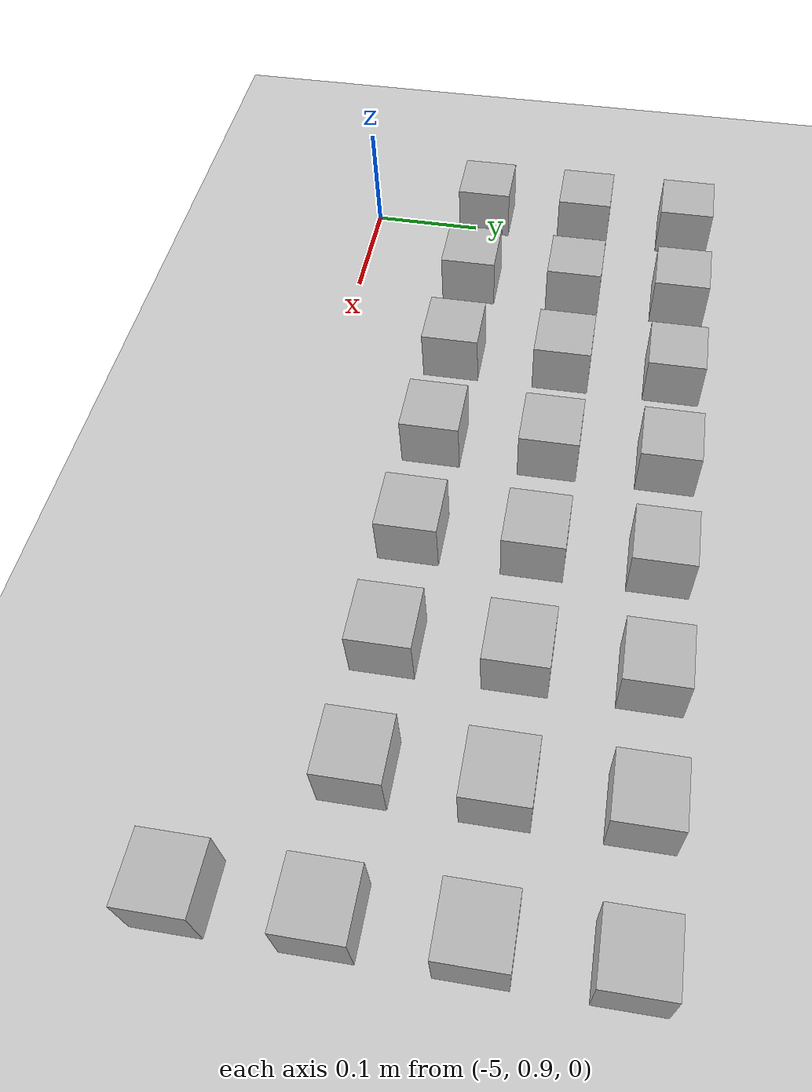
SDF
<sdf version="1.6">
 <world name="default">
  <model name="ground_plane">
   <static>1</static>
   <link name="link">
    <collision name="collision">
     <geometry><plane><normal>0 0 1</normal><size>100 100</size></plane></geometry>
     <surface><friction><ode><mu>100</mu><mu2>50</mu2></ode></friction></surface>
    </collision>
    <visual name="visual">
     <cast_shadows>0</cast_shadows>
     <geometry><plane><normal>0 0 1</normal><size>100 100</size></plane></geometry>
     <material>
      <script><uri>file://media/materials/scripts/gazebo.material</uri><name>Gazebo/Grey</name></script>
     </material>
    </visual>
    <velocity_decay><linear>0</linear><angular>0</angular></velocity_decay>
   </link>
  </model>
  <model name="at39">
   <static>0</static>
   <link name="link">
    <inertial>
     <mass>0.01</mass>
     <inertia><ixx>4e-05</ixx><ixy>0</ixy><ixz>0</ixz><iyy>4e-05</iyy><iyz>0</iyz><izz>4e-05</izz></inertia>
    </inertial>
    <visual name="visual">
     <transparency>0.1</transparency>
     <geometry><box><size>0.05 0.05 0.05</size></box></geometry>
     <material>
      <script>
       <uri>model://at0/materials/scripts</uri>
       <uri>model://at0/materials/textures</uri>
       <name>at0/Diffuse</name>
      </script>
     </material>
    </visual>
    <collision name="collision">
     <geometry><box><size>0.05 0.05 0.05</size></box></geometry>
     <surface><friction><ode><mu>0.8</mu><mu2>0.7</mu2></ode></friction></surface>
    </collision>
    <velocity_decay><linear>0</linear><angular>0</angular></velocity_decay>
   </link>
   <pose>-4.31833 0.909653 0.024993 -2.9e-05 -2.9e-05 5e-06</pose>
  </model>
  <model name="at40">
   <static>0</static>
   <link name="link">
    <inertial>
     <mass>0.01</mass>
     <inertia><ixx>4e-05</ixx><ixy>0</ixy><ixz>0</ixz><iyy>4e-05</iyy><iyz>0</iyz><izz>4e-05</izz></inertia>
    </inertial>
    <visual name="visual">
     <transparency>0.1</transparency>
     <geometry><box><size>0.05 0.05 0.05</size></box></geometry>
     <material>
      <script>
       <uri>model://at0/materials/scripts</uri>
       <uri>model://at0/materials/textures</uri>
       <name>at0/Diffuse</name>
      </script>
     </material>
    </visual>
    <collision name="collision">
     <geometry><box><size>0.05 0.05 0.05</size></box></geometry>
     <surface><friction><ode><mu>0.8</mu><mu2>0.7</mu2></ode></friction></surface>
    </collision>
    <velocity_decay><linear>0</linear><angular>0</angular></velocity_decay>
   </link>
   <pose>-5.01833 1.00965 0.024997 2.9e-05 2.9e-05 5e-06</pose>
  </model>
  <model name="at41">
   <static>0</static>
   <link name="link">
    <inertial>
     <mass>0.01</mass>
     <inertia><ixx>4e-05</ixx><ixy>0</ixy><ixz>0</ixz><iyy>4e-05</iyy><iyz>0</iyz><izz>4e-05</izz></inertia>
    </inertial>
    <visual name="visual">
     <transparency>0.1</transparency>
     <geometry><box><size>0.05 0.05 0.05</size></box></geometry>
     <material>
      <script>
       <uri>model://at0/materials/scripts</uri>
       <uri>model://at0/materials/textures</uri>
       <name>at0/Diffuse</name>
      </script>
     </material>
    </visual>
    <collision name="collision">
     <geometry><box><size>0.05 0.05 0.05</size></box></geometry>
     <surface><friction><ode><mu>0.8</mu><mu2>0.7</mu2></ode></friction></surface>
    </collision>
    <velocity_decay><linear>0</linear><angular>0</angular></velocity_decay>
   </link>
   <pose>-4.91833 1.00965 0.024993 -2.9e-05 -2.9e-05 5e-06</pose>
  </model>
  <model name="at42">
   <static>0</static>
   <link name="link">
    <inertial>
     <mass>0.01</mass>
     <inertia><ixx>4e-05</ixx><ixy>0</ixy><ixz>0</ixz><iyy>4e-05</iyy><iyz>0</iyz><izz>4e-05</izz></inertia>
    </inertial>
    <visual name="visual">
     <transparency>0.1</transparency>
     <geometry><box><size>0.05 0.05 0.05</size></box></geometry>
     <material>
      <script>
       <uri>model://at0/materials/scripts</uri>
       <uri>model://at0/materials/textures</uri>
       <name>at0/Diffuse</name>
      </script>
     </material>
    </visual>
    <collision name="collision">
     <geometry><box><size>0.05 0.05 0.05</size></box></geometry>
     <surface><friction><ode><mu>0.8</mu><mu2>0.7</mu2></ode></friction></surface>
    </collision>
    <velocity_decay><linear>0</linear><angular>0</angular></velocity_decay>
   </link>
   <pose>-4.81833 1.00965 0.024997 2.9e-05 2.9e-05 5e-06</pose>
  </model>
  <model name="at43">
   <static>0</static>
   <link name="link">
    <inertial>
     <mass>0.01</mass>
     <inertia><ixx>4e-05</ixx><ixy>0</ixy><ixz>0</ixz><iyy>4e-05</iyy><iyz>0</iyz><izz>4e-05</izz></inertia>
    </inertial>
    <visual name="visual">
     <transparency>0.1</transparency>
     <geometry><box><size>0.05 0.05 0.05</size></box></geometry>
     <material>
      <script>
       <uri>model://at0/materials/scripts</uri>
       <uri>model://at0/materials/textures</uri>
       <name>at0/Diffuse</name>
      </script>
     </material>
    </visual>
    <collision name="collision">
     <geometry><box><size>0.05 0.05 0.05</size></box></geometry>
     <surface><friction><ode><mu>0.8</mu><mu2>0.7</mu2></ode></friction></surface>
    </collision>
    <velocity_decay><linear>0</linear><angular>0</angular></velocity_decay>
   </link>
   <pose>-4.71833 1.00965 0.024997 2.9e-05 2.9e-05 5e-06</pose>
  </model>
  <model name="at44">
   <static>0</static>
   <link name="link">
    <inertial>
     <mass>0.01</mass>
     <inertia><ixx>4e-05</ixx><ixy>0</ixy><ixz>0</ixz><iyy>4e-05</iyy><iyz>0</iyz><izz>4e-05</izz></inertia>
    </inertial>
    <visual name="visual">
     <transparency>0.1</transparency>
     <geometry><box><size>0.05 0.05 0.05</size></box></geometry>
     <material>
      <script>
       <uri>model://at0/materials/scripts</uri>
       <uri>model://at0/materials/textures</uri>
       <name>at0/Diffuse</name>
      </script>
     </material>
    </visual>
    <collision name="collision">
     <geometry><box><size>0.05 0.05 0.05</size></box></geometry>
     <surface><friction><ode><mu>0.8</mu><mu2>0.7</mu2></ode></friction></surface>
    </collision>
    <velocity_decay><linear>0</linear><angular>0</angular></velocity_decay>
   </link>
   <pose>-4.61833 1.00965 0.024997 2.9e-05 2.9e-05 5e-06</pose>
  </model>
  <model name="at45">
   <static>0</static>
   <link name="link">
    <inertial>
     <mass>0.01</mass>
     <inertia><ixx>4e-05</ixx><ixy>0</ixy><ixz>0</ixz><iyy>4e-05</iyy><iyz>0</iyz><izz>4e-05</izz></inertia>
    </inertial>
    <visual name="visual">
     <transparency>0.1</transparency>
     <geometry><box><size>0.05 0.05 0.05</size></box></geometry>
     <material>
      <script>
       <uri>model://at0/materials/scripts</uri>
       <uri>model://at0/materials/textures</uri>
       <name>at0/Diffuse</name>
      </script>
     </material>
    </visual>
    <collision name="collision">
     <geometry><box><size>0.05 0.05 0.05</size></box></geometry>
     <surface><friction><ode><mu>0.8</mu><mu2>0.7</mu2></ode></friction></surface>
    </collision>
    <velocity_decay><linear>0</linear><angular>0</angular></velocity_decay>
   </link>
   <pose>-4.51833 1.00965 0.024997 2.9e-05 2.9e-05 5e-06</pose>
  </model>
  <model name="at46">
   <static>0</static>
   <link name="link">
    <inertial>
     <mass>0.01</mass>
     <inertia><ixx>4e-05</ixx><ixy>0</ixy><ixz>0</ixz><iyy>4e-05</iyy><iyz>0</iyz><izz>4e-05</izz></inertia>
    </inertial>
    <visual name="visual">
     <transparency>0.1</transparency>
     <geometry><box><size>0.05 0.05 0.05</size></box></geometry>
     <material>
      <script>
       <uri>model://at0/materials/scripts</uri>
       <uri>model://at0/materials/textures</uri>
       <name>at0/Diffuse</name>
      </script>
     </material>
    </visual>
    <collision name="collision">
     <geometry><box><size>0.05 0.05 0.05</size></box></geometry>
     <surface><friction><ode><mu>0.8</mu><mu2>0.7</mu2></ode></friction></surface>
    </collision>
    <velocity_decay><linear>0</linear><angular>0</angular></velocity_decay>
   </link>
   <pose>-4.41833 1.00965 0.024993 -2.9e-05 -2.9e-05 5e-06</pose>
  </model>
  <model name="at47">
   <static>0</static>
   <link name="link">
    <inertial>
     <mass>0.01</mass>
     <inertia><ixx>4e-05</ixx><ixy>0</ixy><ixz>0</ixz><iyy>4e-05</iyy><iyz>0</iyz><izz>4e-05</izz></inertia>
    </inertial>
    <visual name="visual">
     <transparency>0.1</transparency>
     <geometry><box><size>0.05 0.05 0.05</size></box></geometry>
     <material>
      <script>
       <uri>model://at0/materials/scripts</uri>
       <uri>model://at0/materials/textures</uri>
       <name>at0/Diffuse</name>
      </script>
     </material>
    </visual>
    <collision name="collision">
     <geometry><box><size>0.05 0.05 0.05</size></box></geometry>
     <surface><friction><ode><mu>0.8</mu><mu2>0.7</mu2></ode></friction></surface>
    </collision>
    <velocity_decay><linear>0</linear><angular>0</angular></velocity_decay>
   </link>
   <pose>-4.31833 1.00965 0.024997 2.9e-05 2.9e-05 5e-06</pose>
  </model>
  <model name="at48">
   <static>0</static>
   <link name="link">
    <inertial>
     <mass>0.01</mass>
     <inertia><ixx>4e-05</ixx><ixy>0</ixy><ixz>0</ixz><iyy>4e-05</iyy><iyz>0</iyz><izz>4e-05</izz></inertia>
    </inertial>
    <visual name="visual">
     <transparency>0.1</transparency>
     <geometry><box><size>0.05 0.05 0.05</size></box></geometry>
     <material>
      <script>
       <uri>model://at0/materials/scripts</uri>
       <uri>model://at0/materials/textures</uri>
       <name>at0/Diffuse</name>
      </script>
     </material>
    </visual>
    <collision name="collision">
     <geometry><box><size>0.05 0.05 0.05</size></box></geometry>
     <surface><friction><ode><mu>0.8</mu><mu2>0.7</mu2></ode></friction></surface>
    </collision>
    <velocity_decay><linear>0</linear><angular>0</angular></velocity_decay>
   </link>
   <pose>-5.01833 1.10965 0.024997 2.9e-05 2.9e-05 5e-06</pose>
  </model>
  <model name="at49">
   <static>0</static>
   <link name="link">
    <inertial>
     <mass>0.01</mass>
     <inertia><ixx>4e-05</ixx><ixy>0</ixy><ixz>0</ixz><iyy>4e-05</iyy><iyz>0</iyz><izz>4e-05</izz></inertia>
    </inertial>
    <visual name="visual">
     <transparency>0.1</transparency>
     <geometry><box><size>0.05 0.05 0.05</size></box></geometry>
     <material>
      <script>
       <uri>model://at0/materials/scripts</uri>
       <uri>model://at0/materials/textures</uri>
       <name>at0/Diffuse</name>
      </script>
     </material>
    </visual>
    <collision name="collision">
     <geometry><box><size>0.05 0.05 0.05</size></box></geometry>
     <surface><friction><ode><mu>0.8</mu><mu2>0.7</mu2></ode></friction></surface>
    </collision>
    <velocity_decay><linear>0</linear><angular>0</angular></velocity_decay>
   </link>
   <pose>-4.91833 1.10965 0.024993 -2.9e-05 -2.9e-05 5e-06</pose>
  </model>
  <model name="at50">
   <static>0</static>
   <link name="link">
    <inertial>
     <mass>0.01</mass>
     <inertia><ixx>4e-05</ixx><ixy>0</ixy><ixz>0</ixz><iyy>4e-05</iyy><iyz>0</iyz><izz>4e-05</izz></inertia>
    </inertial>
    <visual name="visual">
     <transparency>0.1</transparency>
     <geometry><box><size>0.05 0.05 0.05</size></box></geometry>
     <material>
      <script>
       <uri>model://at0/materials/scripts</uri>
       <uri>model://at0/materials/textures</uri>
       <name>at0/Diffuse</name>
      </script>
     </material>
    </visual>
    <collision name="collision">
     <geometry><box><size>0.05 0.05 0.05</size></box></geometry>
     <surface><friction><ode><mu>0.8</mu><mu2>0.7</mu2></ode></friction></surface>
    </collision>
    <velocity_decay><linear>0</linear><angular>0</angular></velocity_decay>
   </link>
   <pose>-4.81833 1.10965 0.024997 2.9e-05 2.9e-05 4e-06</pose>
  </model>
  <model name="at51">
   <static>0</static>
   <link name="link">
    <inertial>
     <mass>0.01</mass>
     <inertia><ixx>4e-05</ixx><ixy>0</ixy><ixz>0</ixz><iyy>4e-05</iyy><iyz>0</iyz><izz>4e-05</izz></inertia>
    </inertial>
    <visual name="visual">
     <transparency>0.1</transparency>
     <geometry><box><size>0.05 0.05 0.05</size></box></geometry>
     <material>
      <script>
       <uri>model://at0/materials/scripts</uri>
       <uri>model://at0/materials/textures</uri>
       <name>at0/Diffuse</name>
      </script>
     </material>
    </visual>
    <collision name="collision">
     <geometry><box><size>0.05 0.05 0.05</size></box></geometry>
     <surface><friction><ode><mu>0.8</mu><mu2>0.7</mu2></ode></friction></surface>
    </collision>
    <velocity_decay><linear>0</linear><angular>0</angular></velocity_decay>
   </link>
   <pose>-4.71833 1.10965 0.024993 -2.9e-05 -2.9e-05 4e-06</pose>
  </model>
  <model name="at52">
   <static>0</static>
   <link name="link">
    <inertial>
     <mass>0.01</mass>
     <inertia><ixx>4e-05</ixx><ixy>0</ixy><ixz>0</ixz><iyy>4e-05</iyy><iyz>0</iyz><izz>4e-05</izz></inertia>
    </inertial>
    <visual name="visual">
     <transparency>0.1</transparency>
     <geometry><box><size>0.05 0.05 0.05</size></box></geometry>
     <material>
      <script>
       <uri>model://at0/materials/scripts</uri>
       <uri>model://at0/materials/textures</uri>
       <name>at0/Diffuse</name>
      </script>
     </material>
    </visual>
    <collision name="collision">
     <geometry><box><size>0.05 0.05 0.05</size></box></geometry>
     <surface><friction><ode><mu>0.8</mu><mu2>0.7</mu2></ode></friction></surface>
    </collision>
    <velocity_decay><linear>0</linear><angular>0</angular></velocity_decay>
   </link>
   <pose>-4.61833 1.10965 0.024993 -2.9e-05 -2.9e-05 4e-06</pose>
  </model>
  <model name="at53">
   <static>0</static>
   <link name="link">
    <inertial>
     <mass>0.01</mass>
     <inertia><ixx>4e-05</ixx><ixy>0</ixy><ixz>0</ixz><iyy>4e-05</iyy><iyz>0</iyz><izz>4e-05</izz></inertia>
    </inertial>
    <visual name="visual">
     <transparency>0.1</transparency>
     <geometry><box><size>0.05 0.05 0.05</size></box></geometry>
     <material>
      <script>
       <uri>model://at0/materials/scripts</uri>
       <uri>model://at0/materials/textures</uri>
       <name>at0/Diffuse</name>
      </script>
     </material>
    </visual>
    <collision name="collision">
     <geometry><box><size>0.05 0.05 0.05</size></box></geometry>
     <surface><friction><ode><mu>0.8</mu><mu2>0.7</mu2></ode></friction></surface>
    </collision>
    <velocity_decay><linear>0</linear><angular>0</angular></velocity_decay>
   </link>
   <pose>-4.51833 1.10965 0.024993 -2.9e-05 -2.9e-05 4e-06</pose>
  </model>
  <model name="at54">
   <static>0</static>
   <link name="link">
    <inertial>
     <mass>0.01</mass>
     <inertia><ixx>4e-05</ixx><ixy>0</ixy><ixz>0</ixz><iyy>4e-05</iyy><iyz>0</iyz><izz>4e-05</izz></inertia>
    </inertial>
    <visual name="visual">
     <transparency>0.1</transparency>
     <geometry><box><size>0.05 0.05 0.05</size></box></geometry>
     <material>
      <script>
       <uri>model://at0/materials/scripts</uri>
       <uri>model://at0/materials/textures</uri>
       <name>at0/Diffuse</name>
      </script>
     </material>
    </visual>
    <collision name="collision">
     <geometry><box><size>0.05 0.05 0.05</size></box></geometry>
     <surface><friction><ode><mu>0.8</mu><mu2>0.7</mu2></ode></friction></surface>
    </collision>
    <velocity_decay><linear>0</linear><angular>0</angular></velocity_decay>
   </link>
   <pose>-4.41833 1.10965 0.024997 2.9e-05 2.9e-05 4e-06</pose>
  </model>
  <model name="at55">
   <static>0</static>
   <link name="link">
    <inertial>
     <mass>0.01</mass>
     <inertia><ixx>4e-05</ixx><ixy>0</ixy><ixz>0</ixz><iyy>4e-05</iyy><iyz>0</iyz><izz>4e-05</izz></inertia>
    </inertial>
    <visual name="visual">
     <transparency>0.1</transparency>
     <geometry><box><size>0.05 0.05 0.05</size></box></geometry>
     <material>
      <script>
       <uri>model://at0/materials/scripts</uri>
       <uri>model://at0/materials/textures</uri>
       <name>at0/Diffuse</name>
      </script>
     </material>
    </visual>
    <collision name="collision">
     <geometry><box><size>0.05 0.05 0.05</size></box></geometry>
     <surface><friction><ode><mu>0.8</mu><mu2>0.7</mu2></ode></friction></surface>
    </collision>
    <velocity_decay><linear>0</linear><angular>0</angular></velocity_decay>
   </link>
   <pose>-4.31833 1.10965 0.024997 2.9e-05 2.9e-05 4e-06</pose>
  </model>
  <model name="at56">
   <static>0</static>
   <link name="link">
    <inertial>
     <mass>0.01</mass>
     <inertia><ixx>4e-05</ixx><ixy>0</ixy><ixz>0</ixz><iyy>4e-05</iyy><iyz>0</iyz><izz>4e-05</izz></inertia>
    </inertial>
    <visual name="visual">
     <transparency>0.1</transparency>
     <geometry><box><size>0.05 0.05 0.05</size></box></geometry>
     <material>
      <script>
       <uri>model://at0/materials/scripts</uri>
       <uri>model://at0/materials/textures</uri>
       <name>at0/Diffuse</name>
      </script>
     </material>
    </visual>
    <collision name="collision">
     <geometry><box><size>0.05 0.05 0.05</size></box></geometry>
     <surface><friction><ode><mu>0.8</mu><mu2>0.7</mu2></ode></friction></surface>
    </collision>
    <velocity_decay><linear>0</linear><angular>0</angular></velocity_decay>
   </link>
   <pose>-5.01833 1.20965 0.024997 2.9e-05 2.9e-05 4e-06</pose>
  </model>
  <model name="at57">
   <static>0</static>
   <link name="link">
    <inertial>
     <mass>0.01</mass>
     <inertia><ixx>4e-05</ixx><ixy>0</ixy><ixz>0</ixz><iyy>4e-05</iyy><iyz>0</iyz><izz>4e-05</izz></inertia>
    </inertial>
    <visual name="visual">
     <transparency>0.1</transparency>
     <geometry><box><size>0.05 0.05 0.05</size></box></geometry>
     <material>
      <script>
       <uri>model://at0/materials/scripts</uri>
       <uri>model://at0/materials/textures</uri>
       <name>at0/Diffuse</name>
      </script>
     </material>
    </visual>
    <collision name="collision">
     <geometry><box><size>0.05 0.05 0.05</size></box></geometry>
     <surface><friction><ode><mu>0.8</mu><mu2>0.7</mu2></ode></friction></surface>
    </collision>
    <velocity_decay><linear>0</linear><angular>0</angular></velocity_decay>
   </link>
   <pose>-4.91833 1.20965 0.024993 -2.9e-05 -2.9e-05 4e-06</pose>
  </model>
  <model name="at58">
   <static>0</static>
   <link name="link">
    <inertial>
     <mass>0.01</mass>
     <inertia><ixx>4e-05</ixx><ixy>0</ixy><ixz>0</ixz><iyy>4e-05</iyy><iyz>0</iyz><izz>4e-05</izz></inertia>
    </inertial>
    <visual name="visual">
     <transparency>0.1</transparency>
     <geometry><box><size>0.05 0.05 0.05</size></box></geometry>
     <material>
      <script>
       <uri>model://at0/materials/scripts</uri>
       <uri>model://at0/materials/textures</uri>
       <name>at0/Diffuse</name>
      </script>
     </material>
    </visual>
    <collision name="collision">
     <geometry><box><size>0.05 0.05 0.05</size></box></geometry>
     <surface><friction><ode><mu>0.8</mu><mu2>0.7</mu2></ode></friction></surface>
    </collision>
    <velocity_decay><linear>0</linear><angular>0</angular></velocity_decay>
   </link>
   <pose>-4.81833 1.20965 0.024993 -2.9e-05 -2.9e-05 4e-06</pose>
  </model>
  <model name="at59">
   <static>0</static>
   <link name="link">
    <inertial>
     <mass>0.01</mass>
     <inertia><ixx>4e-05</ixx><ixy>0</ixy><ixz>0</ixz><iyy>4e-05</iyy><iyz>0</iyz><izz>4e-05</izz></inertia>
    </inertial>
    <visual name="visual">
     <transparency>0.1</transparency>
     <geometry><box><size>0.05 0.05 0.05</size></box></geometry>
     <material>
      <script>
       <uri>model://at0/materials/scripts</uri>
       <uri>model://at0/materials/textures</uri>
       <name>at0/Diffuse</name>
      </script>
     </material>
    </visual>
    <collision name="collision">
     <geometry><box><size>0.05 0.05 0.05</size></box></geometry>
     <surface><friction><ode><mu>0.8</mu><mu2>0.7</mu2></ode></friction></surface>
    </collision>
    <velocity_decay><linear>0</linear><angular>0</angular></velocity_decay>
   </link>
   <pose>-4.71833 1.20965 0.024993 -2.9e-05 -2.9e-05 4e-06</pose>
  </model>
  <model name="at60">
   <static>0</static>
   <link name="link">
    <inertial>
     <mass>0.01</mass>
     <inertia><ixx>4e-05</ixx><ixy>0</ixy><ixz>0</ixz><iyy>4e-05</iyy><iyz>0</iyz><izz>4e-05</izz></inertia>
    </inertial>
    <visual name="visual">
     <transparency>0.1</transparency>
     <geometry><box><size>0.05 0.05 0.05</size></box></geometry>
     <material>
      <script>
       <uri>model://at0/materials/scripts</uri>
       <uri>model://at0/materials/textures</uri>
       <name>at0/Diffuse</name>
      </script>
     </material>
    </visual>
    <collision name="collision">
     <geometry><box><size>0.05 0.05 0.05</size></box></geometry>
     <surface><friction><ode><mu>0.8</mu><mu2>0.7</mu2></ode></friction></surface>
    </collision>
    <velocity_decay><linear>0</linear><angular>0</angular></velocity_decay>
   </link>
   <pose>-4.61833 1.20965 0.024993 -2.9e-05 -2.9e-05 4e-06</pose>
  </model>
  <model name="at61">
   <static>0</static>
   <link name="link">
    <inertial>
     <mass>0.01</mass>
     <inertia><ixx>4e-05</ixx><ixy>0</ixy><ixz>0</ixz><iyy>4e-05</iyy><iyz>0</iyz><izz>4e-05</izz></inertia>
    </inertial>
    <visual name="visual">
     <transparency>0.1</transparency>
     <geometry><box><size>0.05 0.05 0.05</size></box></geometry>
     <material>
      <script>
       <uri>model://at0/materials/scripts</uri>
       <uri>model://at0/materials/textures</uri>
       <name>at0/Diffuse</name>
      </script>
     </material>
    </visual>
    <collision name="collision">
     <geometry><box><size>0.05 0.05 0.05</size></box></geometry>
     <surface><friction><ode><mu>0.8</mu><mu2>0.7</mu2></ode></friction></surface>
    </collision>
    <velocity_decay><linear>0</linear><angular>0</angular></velocity_decay>
   </link>
   <pose>-4.51833 1.20965 0.024993 -2.9e-05 -2.9e-05 4e-06</pose>
  </model>
  <model name="at62">
   <static>0</static>
   <link name="link">
    <inertial>
     <mass>0.01</mass>
     <inertia><ixx>4e-05</ixx><ixy>0</ixy><ixz>0</ixz><iyy>4e-05</iyy><iyz>0</iyz><izz>4e-05</izz></inertia>
    </inertial>
    <visual name="visual">
     <transparency>0.1</transparency>
     <geometry><box><size>0.05 0.05 0.05</size></box></geometry>
     <material>
      <script>
       <uri>model://at0/materials/scripts</uri>
       <uri>model://at0/materials/textures</uri>
       <name>at0/Diffuse</name>
      </script>
     </material>
    </visual>
    <collision name="collision">
     <geometry><box><size>0.05 0.05 0.05</size></box></geometry>
     <surface><friction><ode><mu>0.8</mu><mu2>0.7</mu2></ode></friction></surface>
    </collision>
    <velocity_decay><linear>0</linear><angular>0</angular></velocity_decay>
   </link>
   <pose>-4.41833 1.20965 0.024997 2.9e-05 2.9e-05 4e-06</pose>
  </model>
  <model name="at63">
   <static>0</static>
   <link name="link">
    <inertial>
     <mass>0.01</mass>
     <inertia><ixx>4e-05</ixx><ixy>0</ixy><ixz>0</ixz><iyy>4e-05</iyy><iyz>0</iyz><izz>4e-05</izz></inertia>
    </inertial>
    <visual name="visual">
     <transparency>0.1</transparency>
     <geometry><box><size>0.05 0.05 0.05</size></box></geometry>
     <material>
      <script>
       <uri>model://at0/materials/scripts</uri>
       <uri>model://at0/materials/textures</uri>
       <name>at0/Diffuse</name>
      </script>
     </material>
    </visual>
    <collision name="collision">
     <geometry><box><size>0.05 0.05 0.05</size></box></geometry>
     <surface><friction><ode><mu>0.8</mu><mu2>0.7</mu2></ode></friction></surface>
    </collision>
    <velocity_decay><linear>0</linear><angular>0</angular></velocity_decay>
   </link>
   <pose>-4.31833 1.20965 0.024993 -2.9e-05 -2.9e-05 4e-06</pose>
  </model>
 </world>
</sdf>
